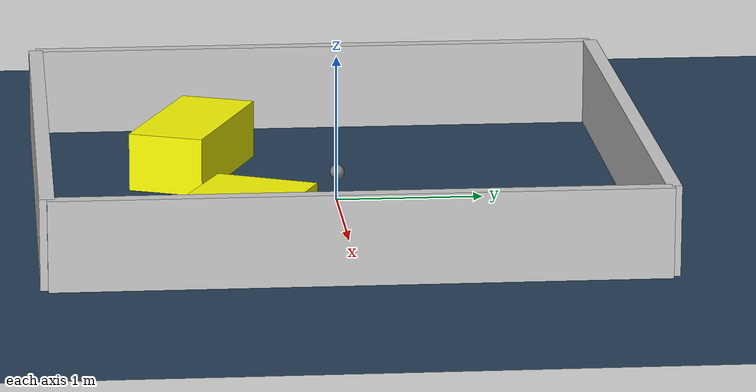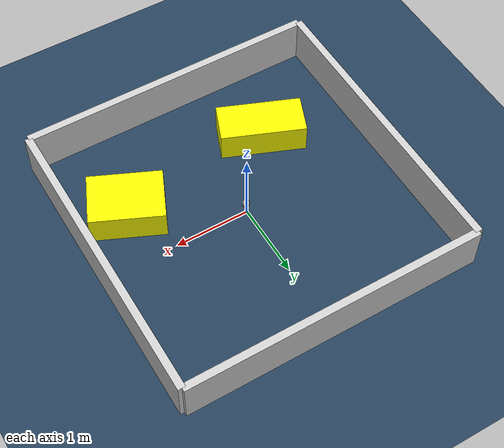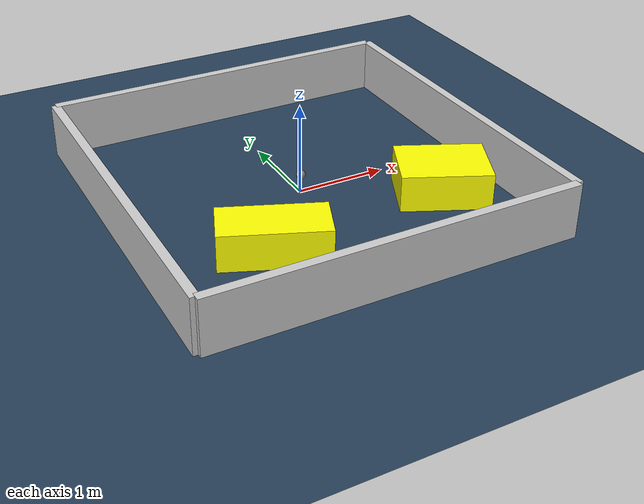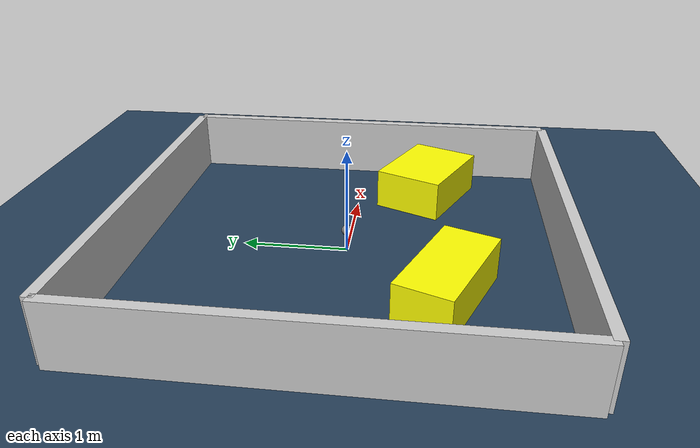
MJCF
<?xml version="1.0" ?>
<mujoco model="generated_environment">
  <option timestep="0.01" integrator="RK4" cone="elliptic"/>
  <default>
    <geom density="1"/>
  </default>
  <asset>
    <texture builtin="gradient" height="3072" rgb1="0.3 0.5 0.7" rgb2="0 0 0" type="skybox" width="512"/>
    <texture builtin="checker" height="300" mark="edge" markrgb="0.8 0.8 0.8" name="groundplane" rgb1="0.2 0.3 0.4" rgb2="0.1 0.2 0.3" type="2d" width="300"/>
    <material name="groundplane" reflectance="0.2" texrepeat="5 5" texture="groundplane" texuniform="true"/>
    <material name="robot" rgba="0.0 1.0 0.0 1"/>
  </asset>
  <worldbody>
    <light dir="0 0 -1" directional="true" pos="0 0 1.5"/>
    <geom condim="4" friction="1.0 0.005 0.001" material="groundplane" name="floor" size="0 0 0.05" type="plane"/>
    <body name="walls">
      <geom name="wall_1" condim="4" pos="-2.0 0.0 0.3" rgba="0.800000011920929 0.800000011920929 0.800000011920929 1.0" size="0.05 2.0 0.3" type="box"/>
      <geom name="wall_2" condim="4" pos="2.0 0.0 0.3" rgba="0.800000011920929 0.800000011920929 0.800000011920929 1.0" size="0.05 2.0 0.3" type="box"/>
      <geom name="wall_3" condim="4" pos="0.0 -2.0 0.3" rgba="0.800000011920929 0.800000011920929 0.800000011920929 1.0" size="2.0 0.05 0.3" type="box"/>
      <geom name="wall_4" condim="4" pos="0.0 2.0 0.3" rgba="0.800000011920929 0.800000011920929 0.800000011920929 1.0" size="2.0 0.05 0.3" type="box"/>
    </body>
    <body name="robot">
      <joint name="joint_x" type="slide" pos="0 0 0" axis="1 0 0"/>
      <joint name="joint_y" type="slide" pos="0 0 0" axis="0 1 0"/>
      <geom name="robot" type="sphere" pos="0.016941308101113606 0.0020418725670063864 0.2" size="0.05" mass="5." friction="1.0 0.005 0.0001" condim="4"/>
      <site name="sensor_ball"/>
    </body>
    <body name="obstacle_1_movable">
      <geom name="obstacle_1_movable" condim="4" pos="-0.7706546194175947 -0.9432025894851829 0.2" euler="0 0 157.9092369268489" friction="1.0 0.005 0.001" rgba="1 1 0 1" size="0.5586187576427564 0.2633514941359537 0.2" type="box" mass="0.1"/>
      <joint type="free"/>
    </body>
    <body name="obstacle_2_movable">
      <geom name="obstacle_2_movable" condim="4" pos="1.3035920545274229 -0.7252858603604044 0.2" euler="0 0 155.53741879675863" friction="1.0 0.005 0.001" rgba="1 1 0 1" size="0.478936507437625 0.34930238674260583 0.2" type="box" mass="0.1"/>
      <joint type="free"/>
    </body>
  </worldbody>
  <actuator>
    <motor name="actuator_x" joint="joint_x" gear="1" ctrlrange="-1 1"/>
    <motor name="actuator_y" joint="joint_y" gear="1" ctrlrange="-1 1"/>
  </actuator>
</mujoco>
